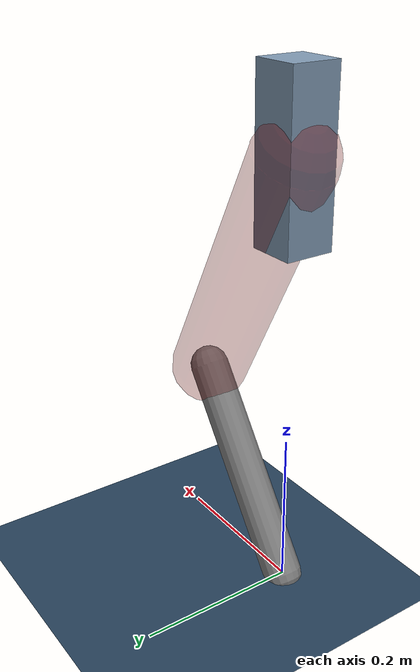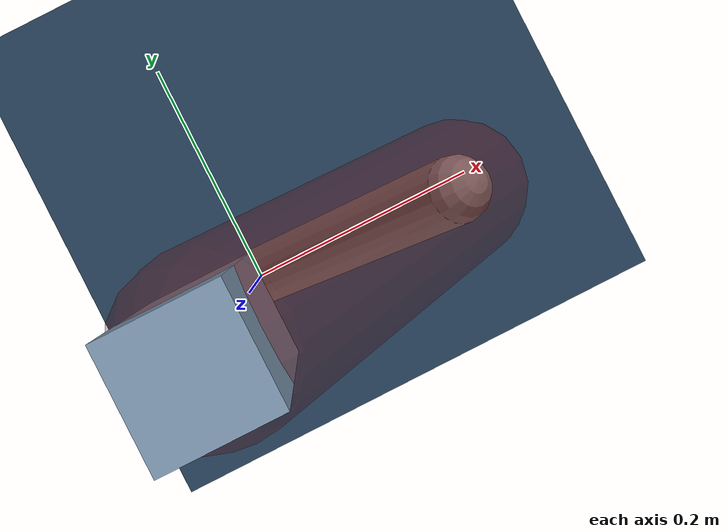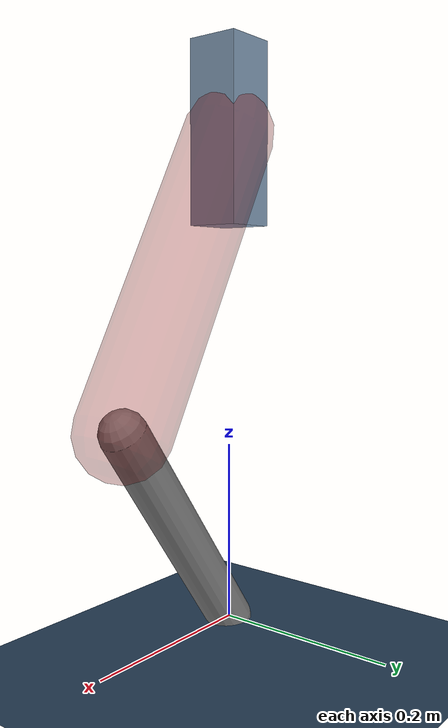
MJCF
<mujoco model="Hopper2D">
	<compiler inertiafromgeom="true" angle="radian" />
	<option timestep="0.001" integrator="implicit" cone="elliptic" solver="Newton" tolerance="1e-10" />

	<default>
		<geom contype="1" conaffinity="1" condim="3" friction="2 0.005 0.0001" solref="0.005 1" />
		<joint limited="true" damping="0.1" />
	</default>

	<asset>
		<texture name="skybox" type="skybox" builtin="gradient" rgb1=".4 .6 .8" rgb2="0 0 0" width="800" height="800" />
		<texture name="grid" type="2d" builtin="checker" rgb1=".1 .2 .3" rgb2=".2 .3 .4" width="300" height="300" mark="edge" markrgb=".2 .3 .4" />
		<material name="ground" texture="grid" texrepeat="1 1" texuniform="true" reflectance="0.1" />
		<material name="leg" rgba="0.5 0.6 0.7 1" />
	</asset>

	<worldbody>

		<geom name="floor" type="plane" size="5 5 0.25" material="ground" />

		<light directional="false" diffuse="0.8 0.8 0.8" specular="0.3 0.3 0.3" pos="0 0 2" dir="0 0 -1" />
		<light mode="targetbodycom" target="base" directional="false" diffuse="0.8 0.8 0.8" specular="0.3 0.3 0.3" pos="0 0 2" dir="0 0 -1" />

		<camera name="fixed" pos="0 -2 1" xyaxes="1 0 0 0 0 1" />
		<camera name="tracking" mode="trackcom" pos="0 -3 1" />

		<body name="root" pos="0 0 0.5448786701346762">
			<joint name="slide_x" type="slide" axis="1 0 0" range="-100 100" />
			<joint name="slide_z" type="slide" axis="0 0 1" range="0 10" />

			<body name="base" pos="0 0 0">
				<geom name="torso" type="box" size="0.03 0.03 0.1" mass="1.366" material="leg" />

				<body name="link1" pos="0 0 0" euler="0 1.0773815744614843 0">
					<joint type="hinge" axis="0 -1 0" pos="0 0 0" name="hinge1" limited="true" range="-3.14 3.14" stiffness="0" damping="0.1" />
					<geom name="thigh" type="capsule" fromto="0 0 0 0.3499915284755957 0 0" size="0.05" rgba="0.5 0 0 0.3" mass="1.126676279731668" />

					<body name="link2" pos="0.3499915284755957 0 0" euler="0 1.1044948262677148 0">
						<joint type="hinge" axis="0 -1 0" pos="0 0 0" name="hinge2" limited="true" range="-3.14 3.14" stiffness="0" damping="0.1" />
						<geom name="shank" type="capsule" fromto="0 0 0 0.28892012669039624 0 0" size="0.025" mass="0.474436101352317" />

					</body>
				</body>
			</body>
		</body>
	</worldbody>

	<actuator>
		<motor name="torque1" joint="hinge1" ctrlrange="-14.828953092598416 14.828953092598416" ctrllimited="true" gear="1" />
		<motor name="torque2" joint="hinge2" ctrlrange="-27.222743100216185 27.222743100216185" ctrllimited="true" gear="1" />
	</actuator>
</mujoco>
